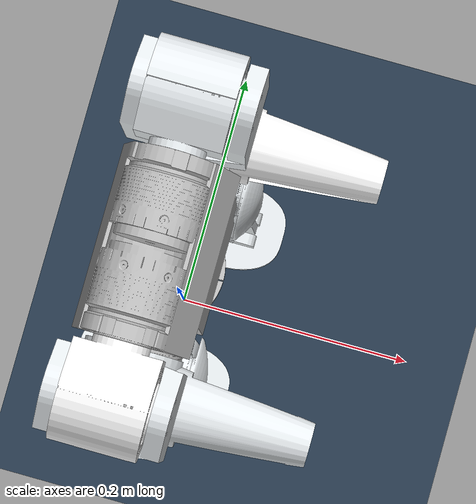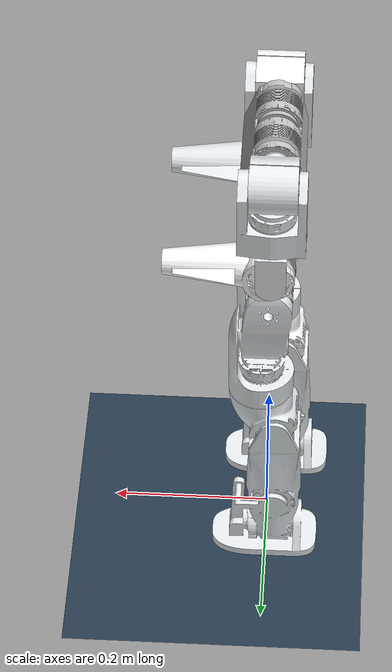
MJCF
<mujoco model="RPMini">
  <compiler angle="radian" meshdir="meshes/" />

  <default>
    <joint limited="true"/>
    <motor ctrllimited="true"/>
    <geom condim="4" contype="1" conaffinity="0" solref="0.001 2" friction="0.9 0.2 0.2" group="1"/>
    <equality solref="0.001 2"/>
    <default class="visualgeom">
      <geom material="visualgeom" condim="1" contype="0" conaffinity="0"/>
    </default>
    <default class="obstacle">
      <geom material="obstacle" condim="3" contype="1" conaffinity="15"/>
    </default>
    <default class="waist_joint_param">
      <joint damping="0.01" frictionloss="0.01" armature="0.01"/>
    </default>
    <default class="leg_joint_param">
      <joint damping="0.01" frictionloss="0.01" armature="0.01"/>
    </default>
    <default class="arm_joint_param">
      <joint damping="0.01" frictionloss="0.01" armature="0.01"/>
    </default>
  </default>

  <default class="main">
    <default class="body_joint">
      <joint range="-0.87 0.87" type="hinge" limited="auto"  armature="0.01" frictionloss="0.2" />
      <position ctrlrange="-0.87 0.87" forcelimited="auto" forcerange="-60 60" kp="40." kv="1." />
      <motor ctrllimited="auto" forcelimited="auto" forcerange="-60 60" gear="1" />
    </default>
    <default class="arm_joint">
      <joint range="-0.79 2.61" type="hinge" limited="auto"  armature="0.01" frictionloss="0.2" />
      <position ctrlrange="-0.79 2.61" forcelimited="auto" forcerange="-60 60" kp="40." kv="1." />
      <motor ctrllimited="auto" forcelimited="auto" forcerange="-60 60" gear="1" />
    </default>
    <default class="leg_joint">
      <joint range="-2.75 -0.55" type="hinge" limited="auto"  armature="0.01" frictionloss="0.2" />
      <position ctrlrange="-2.75 -0.55" forcelimited="auto" forcerange="-60 60" kp="40." kv="1." />
      <motor ctrllimited="auto" forcelimited="auto" forcerange="-60 60" gear="1" />
    </default>

    <default class="sensor_site">
      <site type="sphere" size="0.023" rgba="1 0 1 0.2" />
    </default>

    <default class="contype1">
      <geom contype="2" conaffinity="1" friction="1.2 0.8 0.0005" margin="0.002" condim="4" />
    </default>
    <default class="contype2">
      <geom contype="2" conaffinity="1" friction="1.2 0.8 0.0005" margin="0.002" condim="4" />
    </default>
    <default class="contype3">
      <geom contype="2" conaffinity="1" friction="1.2 0.8 0.0005" margin="0.002" condim="4" />
    </default>
    <default class="visualization">
      <geom contype="0" conaffinity="0" friction="1.2 0.8 0.0005" margin="0.002" condim="4" />
    </default>
  </default>

  <asset>
    <texture type="skybox" builtin="gradient" rgb1="0.3 0.5 0.7" rgb2="0 0 0" width="512" height="512"/>
    <texture name="texplane" type="2d" builtin="checker" rgb1=".2 .3 .4" rgb2=".1 0.15 0.2" width="512" height="512" mark="cross" markrgb=".8 .8 .8"/>
    <material name="matplane" reflectance="0." texture="texplane" texrepeat="1 1" texuniform="true"/>
    <material name="obstacle" rgba="0.9 0.6 0.2 1"/>
    <material name="visualgeom" rgba="0.5 0.9 0.2 1"/>

    <mesh name="base_link" file="base_link.STL" />
    <mesh name="Body_Link" file="Body_Link.STL" />
    <mesh name="Arm_Left_Link_1" file="Arm_Left_Link_1.STL" />
    <mesh name="Arm_Left_Link_2" file="Arm_Left_Link_2.STL" />
    <mesh name="Arm_Left_Link_3" file="Arm_Left_Link_3.STL" />
    <mesh name="Arm_Left_Link_4" file="Arm_Left_Link_4.STL" />
    <mesh name="Arm_Right_Link_1" file="Arm_Right_Link_1.STL" />
    <mesh name="Arm_Right_Link_2" file="Arm_Right_Link_2.STL" />
    <mesh name="Arm_Right_Link_3" file="Arm_Right_Link_3.STL" />
    <mesh name="Arm_Right_Link_4" file="Arm_Right_Link_4.STL" />
    <mesh name="Leg_Right_Link_1" file="Leg_Right_Link_1.STL" />
    <mesh name="Leg_Right_Link_2" file="Leg_Right_Link_2.STL" />
    <mesh name="Leg_Right_Link_3" file="Leg_Right_Link_3.STL" />
    <mesh name="Leg_Right_Link_4" file="Leg_Right_Link_4.STL" />
    <mesh name="Leg_Right_Link_5" file="Leg_Right_Link_5.STL" />
    <mesh name="Leg_Right_Link_6" file="Leg_Right_Link_6.STL" />
    <mesh name="Leg_Left_Link_1" file="Leg_Left_Link_1.STL" />
    <mesh name="Leg_Left_Link_2" file="Leg_Left_Link_2.STL" />
    <mesh name="Leg_Left_Link_3" file="Leg_Left_Link_3.STL" />
    <mesh name="Leg_Left_Link_4" file="Leg_Left_Link_4.STL" />
    <mesh name="Leg_Left_Link_5" file="Leg_Left_Link_5.STL" />
    <mesh name="Leg_Left_Link_6" file="Leg_Left_Link_6.STL" />
    <material name="base_link_mat" rgba="0.7529 0.7529 0.7529 1" specular="0" />
    <material name="Body_Link_mat" rgba="0.7529 0.7529 0.7529 1" specular="0" />
    <material name="Arm_Left_Link_1_mat" rgba="0.898 0.9176 0.9294 1" specular="0" />
    <material name="Arm_Left_Link_2_mat" rgba="0.898 0.9176 0.9294 1" specular="0" />
    <material name="Arm_Left_Link_3_mat" rgba="0.898 0.9176 0.9294 1" specular="0" />
    <material name="Arm_Left_Link_4_mat" rgba="1 1 1 1" specular="0" />
    <material name="Arm_Right_Link_1_mat" rgba="1 1 1 1" specular="0" />
    <material name="Arm_Right_Link_2_mat" rgba="0.898 0.9176 0.9294 1" specular="0" />
    <material name="Arm_Right_Link_3_mat" rgba="0.898 0.9176 0.9294 1" specular="0" />
    <material name="Arm_Right_Link_4_mat" rgba="0.898 0.9176 0.9294 1" specular="0" />
    <material name="Leg_Right_Link_1_mat" rgba="0.898 0.9176 0.9294 1" specular="0" />
    <material name="Leg_Right_Link_2_mat" rgba="0.898 0.9176 0.9294 1" specular="0" />
    <material name="Leg_Right_Link_3_mat" rgba="1 1 1 1" specular="0" />
    <material name="Leg_Right_Link_4_mat" rgba="0.898 0.9176 0.9294 1" specular="0" />
    <material name="Leg_Right_Link_5_mat" rgba="0.898 0.9176 0.9294 1" specular="0" />
    <material name="Leg_Right_Link_6_mat" rgba="0.898 0.9176 0.9294 1" specular="0" />
    <material name="Leg_Left_Link_1_mat" rgba="0.898 0.9176 0.9294 1" specular="0" />
    <material name="Leg_Left_Link_2_mat" rgba="0.898 0.9176 0.9294 1" specular="0" />
    <material name="Leg_Left_Link_3_mat" rgba="0.898 0.9176 0.9294 1" specular="0" />
    <material name="Leg_Left_Link_4_mat" rgba="0.898 0.9176 0.9294 1" specular="0" />
    <material name="Leg_Left_Link_5_mat" rgba="0.898 0.9176 0.9294 1" specular="0" />
    <material name="Leg_Left_Link_6_mat" rgba="0.898 0.9176 0.9294 1" specular="0" />
  </asset>

  <worldbody>
    <light directional="true" diffuse=".4 .4 .4" specular="0.1 0.1 0.1" pos="0 0 5.0" dir="0 0 -1" castshadow="false"/>
    <light directional="true" diffuse=".6 .6 .6" specular="0.2 0.2 0.2" pos="0 0 4" dir="0 0 -1"/>
    <geom name="ground" type="plane" size="0 0 1" pos="0.001 0 0" quat="1 0 0 0" material="matplane" condim="1" conaffinity="15" group="0"/>

    <body name="base_link" pos="0 0 0.42">
    <freejoint/>
    <site name="imu" size="0.01" pos="0.0 0 0.0"/>
      <inertial pos="0 -0.0000002 0.0333218" mass="1.3283615" fullinertia="0.0035634 0.0002444 0.003576 0.000008 0.0000014 0.0000005"/>
      <geom pos="0 0 0" group="1" contype="0" conaffinity="0" material="base_link_mat" type="mesh" mesh="base_link" />
      <geom pos="0 0 0.03" rgba="0.9373 0.2667 0.2667 1" group="3" contype="1" conaffinity="1" type="box" size="0.03 0.085 0.02" />
      <body name="body_link" pos="0 0 0.0578">
        <joint name="body_yaw_joint" type="hinge" axis="0 0 1" limited="true" range="-1.57 1.57" damping="0" frictionloss="0"/>
        <inertial pos="-0.0003165 -0.0004759 0.1166458" mass="2.7174975" fullinertia="0.0091348 0.0077747 0.0030079 0.0000031 0.0001627 -0.0000491"/>
        <geom pos="0 0 0" group="1" contype="0" conaffinity="0" material="Body_Link_mat" type="mesh" mesh="Body_Link" />
        <geom pos="0 0 0.1" rgba="0.9373 0.2667 0.2667 1" group="3" contype="1" conaffinity="1" type="box" size="0.035 0.06 0.09" />
        <body name="shoulder_left_pitch_Link" pos="-0.0033281 0.0608 0.1685">
          <joint name="shoulder_left_pitch_joint" type="hinge" axis="0 1 0" limited="true" range="-1.57 1.57" damping="0" frictionloss="0"/>
          <inertial pos="0.0002812 0.0357472 0.0000004" mass="0.5568108" fullinertia="0.000194 0.0001519 0.0001773 -0.0000007 0.0000005 0.0000001"/>
          <geom pos="0 0 0" group="1" contype="0" conaffinity="0" material="Arm_Left_Link_1_mat" type="mesh" mesh="Arm_Left_Link_1" />
          <geom pos="0 0.0374461 0" quat="0.7071068 0 -0.7071068 0" rgba="0.9373 0.2667 0.2667 1" group="3" contype="1" conaffinity="1" type="cylinder" size="0.033186 0.037491" />
          <body name="shoulder_left_roll_Link" pos="0.0298 0.0375 0">
            <joint name="shoulder_left_roll_joint" type="hinge" axis="1 0 0" limited="true" range="0 1.94" damping="0" frictionloss="0"/>
            <inertial pos="-0.0277702 -0.0000002 -0.0505865" mass="0.8451671" fullinertia="0.00059 0.0008885 0.0006511 0.0000001 -0.0000134 -0.000001"/>
            <geom pos="0 0 0" group="1" contype="0" conaffinity="0" material="Arm_Left_Link_2_mat" type="mesh" mesh="Arm_Left_Link_2" />
            <geom pos="-0.03 -0.000826 -0.06" rgba="0.9373 0.2667 0.2667 1" group="3" contype="1" conaffinity="1" type="box" size="0.045 0.03 0.025" />
            <body name="elbow_left_yaw_Link" pos="-0.0285 0 -0.0863">
              <joint name="elbow_left_yaw_joint" type="hinge" axis="0 0 1" limited="true" range="-1.57 1.57" damping="0" frictionloss="0"/>
              <inertial pos="0 0.0215805 -0.0211158" mass="0.0900203" fullinertia="0.0000489 0.0000413 0.0000267 0 0 0.000013"/>
              <geom pos="0 0 0" group="1" contype="0" conaffinity="0" material="Arm_Left_Link_3_mat" type="mesh" mesh="Arm_Left_Link_3" />
              <geom pos="0 0.03 -0.03" rgba="0.9373 0.2667 0.2667 1" group="3" contype="1" conaffinity="1" type="box" size="0.02 0.0050005 0.03" />
              <body name="elbow_left_pitch_Link" pos="0 0.025 -0.045">
                <joint name="elbow_left_pitch_joint" type="hinge" axis="0 1 0" limited="true" range="-0.6 2.1" damping="0" frictionloss="0"/>
                <inertial pos="0.0246073 -0.0317318 0.0000001" mass="0.7552911" fullinertia="0.00022 0.0011752 0.0011753 0.000013 -0.0000018 -0.0000004"/>
                <geom pos="0 0 0" group="1" contype="0" conaffinity="0" material="Arm_Left_Link_4_mat" type="mesh" mesh="Arm_Left_Link_4" />
                <geom pos="0.047796 -0.029616 0" quat="0.7071068 0 -0.7071068 0" rgba="0.9373 0.2667 0.2667 1" group="3" contype="1" conaffinity="1" type="cylinder" size="0.024883 0.08" />
              </body>
            </body>
          </body>
        </body>
        <body name="shoulder_right_pitch_Link" pos="-0.0033281 -0.0608 0.1685">
          <joint name="shoulder_right_pitch_joint" type="hinge" axis="0 1 0" limited="true" range="-1.57 1.57" damping="0" frictionloss="0"/>
          <inertial pos="0.0002812 -0.0357471 -0.0000003" mass="0.5568108" fullinertia="0.0001939 0.0001518 0.0001774 0.0000008 -0.0000002 0"/>
          <geom pos="0 0 0" group="1" contype="0" conaffinity="0" material="Arm_Right_Link_1_mat" type="mesh" mesh="Arm_Right_Link_1" />
          <geom pos="0 -0.0374461 0" quat="0.7071068 0 -0.7071068 0" rgba="0.9373 0.2667 0.2667 1" group="3" contype="1" conaffinity="1" type="cylinder" size="0.033186 0.037491" />
          <body name="shoulder_right_roll_Link" pos="0.0298 -0.0375 0">
            <joint name="shoulder_right_roll_joint" type="hinge" axis="1 0 0" limited="true" range="-1.94 0" damping="0" frictionloss="0"/>
            <inertial pos="-0.0277705 0.0000003 -0.0505865" mass="0.8451671" fullinertia="0.00059 0.0008885 0.0006512 0 -0.0000132 0.0000001"/>
            <geom pos="0 0 0" group="1" contype="0" conaffinity="0" material="Arm_Right_Link_2_mat" type="mesh" mesh="Arm_Right_Link_2" />
            <geom pos="-0.03 0.000826 -0.06" rgba="0.9373 0.2667 0.2667 1" group="3" contype="1" conaffinity="1" type="box" size="0.045 0.03 0.025" />
            <body name="elbow_right_yaw_Link" pos="-0.0285 0 -0.0863">
              <joint name="elbow_right_yaw_joint" type="hinge" axis="0 0 1" limited="true" range="-1.57 1.57" damping="0" frictionloss="0"/>
              <inertial pos="0 -0.0215805 -0.0211158" mass="0.0900203" fullinertia="0.0000489 0.0000413 0.0000267 0 0 -0.000013"/>
              <geom pos="0 0 0" group="1" contype="0" conaffinity="0" material="Arm_Right_Link_3_mat" type="mesh" mesh="Arm_Right_Link_3" />
              <geom pos="0 -0.03 -0.03" rgba="0.9373 0.2667 0.2667 1" group="3" contype="1" conaffinity="1" type="box" size="0.02 0.0050005 0.03" />
              <body name="elbow_right_pitch_Link" pos="0 -0.025 -0.045">
                <joint name="elbow_right_pitch_joint" type="hinge" axis="0 1 0" limited="true" range="-0.6 2.1" damping="0" frictionloss="0"/>
                <inertial pos="0.0246078 0.0317318 0.0000003" mass="0.7552911" fullinertia="0.0002201 0.0011741 0.0011742 -0.0000131 -0.0000017 0.0000007"/>
                <geom pos="0 0 0" group="1" contype="0" conaffinity="0" material="Arm_Right_Link_4_mat" type="mesh" mesh="Arm_Right_Link_4" />
                <geom pos="0.047796 0.029616 0" quat="0.7071068 0 -0.7071068 0" rgba="0.9373 0.2667 0.2667 1" group="3" contype="1" conaffinity="1" type="cylinder" size="0.024883 0.08" />
              </body>
            </body>
          </body>
        </body>
      </body>
      <body name="thigh_right_pitch_Link" pos="0 -0.090733 0.028784">
        <joint name="thigh_right_pitch_joint" type="hinge" axis="0 0.98481 0.17365" limited="true" range="-2 2" damping="0" frictionloss="0"/>
        <inertial pos="0.0032069 0.0109448 -0.0525797" mass="0.7055715" fullinertia="0.000761 0.0007236 0.0004068 -0.0000076 0.0000218 0.0001844"/>
        <geom pos="0 0 0" group="1" contype="0" conaffinity="0" material="Leg_Right_Link_1_mat" type="mesh" mesh="Leg_Right_Link_1" />
        <geom pos="0.0044283 0.015284 -0.0345573" quat="0.9961947 0.0871557 0 0" rgba="0.9373 0.2667 0.2667 1" group="3" contype="1" conaffinity="1" type="box" size="0.0322718 0.0331212 0.0608995" />
        <body name="thigh_right_roll_Link" pos="0.033382 0.018724 -0.067798">
          <joint name="thigh_right_roll_joint" type="hinge" axis="1 0.0002533 -0.0014366" limited="true" range="-1.57 0.66" damping="0" frictionloss="0"/>
          <inertial pos="-0.0221109 -0.0001617 -0.0597233" mass="0.7536725" fullinertia="0.0007192 0.0008115 0.0005711 -0.0000005 -0.0001783 -0.0000012"/>
          <geom pos="0 0 0" group="1" contype="0" conaffinity="0" material="Leg_Right_Link_2_mat" type="mesh" mesh="Leg_Right_Link_2" />
          <geom pos="-0.0240214 0.0003827 -0.06168" rgba="0.9373 0.2667 0.2667 1" group="3" contype="1" conaffinity="1" type="cylinder" size="0.042978 0.030337" />
          <body name="knee_right_yaw_Link" pos="-0.028674 -0.0002439 -0.094668">
            <joint name="knee_right_yaw_joint" type="hinge" axis="-0.0014363 -0.001391 1" limited="true" range="-1.57 1.57" damping="0" frictionloss="0"/>
            <inertial pos="-0.0010623 0.0013856 -0.0329021" mass="0.8048896" fullinertia="0.0006481 0.0006948 0.0006528 0.0000098 -0.0001145 0.0000138"/>
            <geom pos="0 0 0" group="1" contype="0" conaffinity="0" material="Leg_Right_Link_3_mat" type="mesh" mesh="Leg_Right_Link_3" />
            <geom pos="0 0.000383 -0.0354777" rgba="0.9373 0.2667 0.2667 1" group="3" contype="1" conaffinity="1" type="cylinder" size="0.042 0.038291" />
            <body name="knee_right_pitch_Link" pos="-0.019483 0.033861 -0.044901">
              <joint name="knee_right_pitch_joint" type="hinge" axis="0.0002553 1 0.0013907" limited="true" range="0 2.24" damping="0" frictionloss="0"/>
              <inertial pos="-0.0011982 -0.0358569 -0.1334022" mass="1.4602632" fullinertia="0.0050306 0.0050171 0.0010541 0.0000041 0.0000089 -0.0000004"/>
              <geom pos="0 0 0" group="1" contype="0" conaffinity="0" material="Leg_Right_Link_4_mat" type="mesh" mesh="Leg_Right_Link_4" />
              <geom pos="0.006268 -0.035997 -0.117562" rgba="0.9373 0.2667 0.2667 1" group="3" contype="1" conaffinity="1" type="cylinder" size="0.042 0.095391" />
              <body name="foot_right_pitch_Link" pos="-0.0043128 -0.0342792 -0.1944032">
                <joint name="foot_right_pitch_joint" type="hinge" axis="0.0002553 1 0.0013907" limited="true" range="-0.96 0.44" damping="0" frictionloss="0"/>
                <inertial pos="-0.0318857 -0.0001287 0.0007301" mass="0.08" fullinertia="0.0000063 0.0000038 0.0000038 0 -0.0000001 0"/>
                <geom pos="0 0 0" group="1" contype="0" conaffinity="0" material="Leg_Right_Link_5_mat" type="mesh" mesh="Leg_Right_Link_5" />
                <geom pos="0.01 0 -0.027" rgba="0.9373 0.2667 0.2667 1" group="3" contype="1" conaffinity="1" type="box" size="0.0675 0.0365 0.0050005" />
                <body name="foot_right_roll_Link" pos="0 0 0">
                  <joint name="foot_right_roll_joint" type="hinge" axis="1 0.0002533 -0.0014366" limited="true" range="-0.17 0.17" damping="0" frictionloss="0"/>
                  <inertial pos="0.0065742 -0.000011 -0.0223635" mass="0.3325098" fullinertia="0.0001723 0.0004989 0.0005821 -0.0000014 0.0000232 0.0000002"/>
                  <geom pos="0 0 0" group="1" contype="0" conaffinity="0" material="Leg_Right_Link_6_mat" type="mesh" mesh="Leg_Right_Link_6" />
                  <geom pos="0.01 0 -0.027" rgba="0.9373 0.2667 0.2667 1" group="3" contype="1" conaffinity="1" type="box" size="0.0675 0.0365 0.0050005" />
                </body>
              </body>
            </body>
          </body>
        </body>
      </body>
      <body name="thigh_left_pitch_Link" pos="0 0.090733 0.028784">
        <joint name="thigh_left_pitch_joint" type="hinge" axis="0 0.98481 -0.17365" limited="true" range="-2 2" damping="0" frictionloss="0"/>
        <inertial pos="0.0044538 -0.0106927 -0.052492" mass="0.7055715" fullinertia="0.0007597 0.0007237 0.000408 0.000012 0.0000304 -0.000184"/>
        <geom pos="0 0 0" group="1" contype="0" conaffinity="0" material="Leg_Left_Link_1_mat" type="mesh" mesh="Leg_Left_Link_1" />
        <geom pos="0.0044283 -0.015284 -0.0345573" quat="0.9961947 -0.0871557 0 0" rgba="0.9373 0.2667 0.2667 1" group="3" contype="1" conaffinity="1" type="box" size="0.0322718 0.0331212 0.0608995" />
        <body name="thigh_left_roll_Link" pos="0.035 -0.018586 -0.067015">
          <joint name="thigh_left_roll_joint" type="hinge" axis="1 0 0" limited="true" range="-0.66 1.57" damping="0" frictionloss="0"/>
          <inertial pos="-0.0207476 0.0000923 -0.060214" mass="0.7536725" fullinertia="0.0007273 0.0008115 0.000563 0.0000004 -0.0001747 0.0000002"/>
          <geom pos="0 0 0" group="1" contype="0" conaffinity="0" material="Leg_Left_Link_2_mat" type="mesh" mesh="Leg_Left_Link_2" />
          <geom pos="-0.0258 -0.0003827 -0.06168" rgba="0.9373 0.2667 0.2667 1" group="3" contype="1" conaffinity="1" type="cylinder" size="0.042 0.030337" />
          <body name="knee_left_yaw_Link" pos="-0.0265 0.0001325 -0.0953">
            <joint name="knee_left_yaw_joint" type="hinge" axis="0 0.0013908 1" limited="true" range="-1.57 1.57" damping="0" frictionloss="0"/>
            <inertial pos="-0.0098385 -0.0014269 -0.0331428" mass="0.804886" fullinertia="0.0006549 0.0006945 0.000646 -0.0000101 -0.000112 -0.0000143"/>
            <geom pos="0 0 0" group="1" contype="0" conaffinity="0" material="Leg_Left_Link_3_mat" type="mesh" mesh="Leg_Left_Link_3" />
            <geom pos="0 -0.000383 -0.0354777" rgba="0.9373 0.2667 0.2667 1" group="3" contype="1" conaffinity="1" type="cylinder" size="0.042 0.038291" />
            <body name="knee_left_pitch_Link" pos="-0.01811 -0.0340457 -0.0453338">
              <joint name="knee_left_pitch_joint" type="hinge" axis="0.005968 0.99998 -0.0013908" limited="true" range="0 2.24" damping="0" frictionloss="0"/>
              <inertial pos="0.001717 0.0358642 -0.1333744" mass="1.4602632" fullinertia="0.0050264 0.0050151 0.0010567 -0.0000037 0.0001002 0.0000014"/>
              <geom pos="0 0 0" group="1" contype="0" conaffinity="0" material="Leg_Left_Link_4_mat" type="mesh" mesh="Leg_Left_Link_4" />
              <geom pos="0.006268 0.035997 -0.117562" rgba="0.9373 0.2667 0.2667 1" group="3" contype="1" conaffinity="1" type="cylinder" size="0.042 0.095391" />
              <body name="foot_left_pitch_Link" pos="-0.0002029 0.03427 -0.19445">
                <joint name="foot_left_pitch_joint" type="hinge" axis="0.005968 0.99998 -0.0013908" limited="true" range="-0.96 0.44" damping="0" frictionloss="0"/>
                <inertial pos="-0.0318938 0 0" mass="0.08" diaginertia="0.0000063 0.0000038 0.0000038"/>
                <geom pos="0 0 0" group="1" contype="0" conaffinity="0" material="Leg_Left_Link_5_mat" type="mesh" mesh="Leg_Left_Link_5" />
                <geom pos="0.01 0 -0.027" rgba="0.9373 0.2667 0.2667 1" group="3" contype="1" conaffinity="1" type="box" size="0.0675 0.0365 0.0050005" />
                <body name="foot_left_roll_Link" pos="0 0 0">
                  <joint name="foot_left_roll_joint" type="hinge" axis="0.99998 0.005968 0" limited="true" range="-0.17 0.17" damping="0" frictionloss="0"/>
                  <inertial pos="0.0070839 0.0000232 -0.0222072" mass="0.3325099" fullinertia="0.0001715 0.0004989 0.0005829 0.0000011 0.0000138 0.0000001"/>
                  <geom pos="0 0 0" group="1" contype="0" conaffinity="0" material="Leg_Left_Link_6_mat" type="mesh" mesh="Leg_Left_Link_6" />
                  <geom pos="0.01 0 -0.027" rgba="0.9373 0.2667 0.2667 1" group="3" contype="1" conaffinity="1" type="box" size="0.0675 0.0365 0.0050005" />
                </body>
              </body>
            </body>
          </body>
        </body>
      </body>
    </body>
  </worldbody>
  <actuator>
    <motor name="body_yaw_joint" joint="body_yaw_joint" ctrllimited="auto" ctrlrange=" -200 200" gear="1"/>
    <motor name="shoulder_left_pitch_joint" joint="shoulder_left_pitch_joint" ctrllimited="auto" ctrlrange=" -200 200" gear="1"/>
    <motor name="shoulder_left_roll_joint" joint="shoulder_left_roll_joint" ctrllimited="auto" ctrlrange=" -200 200" gear="1"/>
    <motor name="elbow_left_yaw_joint" joint="elbow_left_yaw_joint" ctrllimited="auto" ctrlrange=" -200 200" gear="1"/>
    <motor name="elbow_left_pitch_joint" joint="elbow_left_pitch_joint" ctrllimited="auto" ctrlrange=" -200 200" gear="1"/>
    <motor name="shoulder_right_pitch_joint" joint="shoulder_right_pitch_joint" ctrllimited="auto" ctrlrange=" -200 200" gear="1"/>
    <motor name="shoulder_right_roll_joint" joint="shoulder_right_roll_joint" ctrllimited="auto" ctrlrange=" -200 200" gear="1"/>
    <motor name="elbow_right_yaw_joint" joint="elbow_right_yaw_joint" ctrllimited="auto" ctrlrange=" -200 200" gear="1"/>
    <motor name="elbow_right_pitch_joint" joint="elbow_right_pitch_joint" ctrllimited="auto" ctrlrange=" -200 200" gear="1"/>
    <motor name="thigh_right_pitch_joint" joint="thigh_right_pitch_joint" ctrllimited="auto" ctrlrange=" -200 200" gear="1"/>
    <motor name="thigh_right_roll_joint" joint="thigh_right_roll_joint" ctrllimited="auto" ctrlrange=" -200 200" gear="1"/>
    <motor name="knee_right_yaw_joint" joint="knee_right_yaw_joint" ctrllimited="auto" ctrlrange=" -200 200" gear="1"/>
    <motor name="knee_right_pitch_joint" joint="knee_right_pitch_joint" ctrllimited="auto" ctrlrange=" -200 200" gear="1"/>
    <motor name="foot_right_pitch_joint" joint="foot_right_pitch_joint" ctrllimited="auto" ctrlrange=" -200 200" gear="1"/>
    <motor name="foot_right_roll_joint" joint="foot_right_roll_joint" ctrllimited="auto" ctrlrange=" -200 200" gear="1"/>
    <motor name="thigh_left_pitch_joint" joint="thigh_left_pitch_joint" ctrllimited="auto" ctrlrange=" -200 200" gear="1"/>
    <motor name="thigh_left_roll_joint" joint="thigh_left_roll_joint" ctrllimited="auto" ctrlrange=" -200 200" gear="1"/>
    <motor name="knee_left_yaw_joint" joint="knee_left_yaw_joint" ctrllimited="auto" ctrlrange=" -200 200" gear="1"/>
    <motor name="knee_left_pitch_joint" joint="knee_left_pitch_joint" ctrllimited="auto" ctrlrange=" -200 200" gear="1"/>
    <motor name="foot_left_pitch_joint" joint="foot_left_pitch_joint" ctrllimited="auto" ctrlrange=" -200 200" gear="1"/>
    <motor name="foot_left_roll_joint" joint="foot_left_roll_joint" ctrllimited="auto" ctrlrange=" -200 200" gear="1"/>
  </actuator>
  <sensor>
    <actuatorpos name="body_yaw_joint_p" actuator="body_yaw_joint" user="13"/>
    <actuatorpos name="shoulder_left_pitch_joint_p" actuator="shoulder_left_pitch_joint" user="13"/>
    <actuatorpos name="shoulder_left_roll_joint_p" actuator="shoulder_left_roll_joint" user="13"/>
    <actuatorpos name="elbow_left_yaw_joint_p" actuator="elbow_left_yaw_joint" user="13"/>
    <actuatorpos name="elbow_left_pitch_joint_p" actuator="elbow_left_pitch_joint" user="13"/>
    <actuatorpos name="shoulder_right_pitch_joint_p" actuator="shoulder_right_pitch_joint" user="13"/>
    <actuatorpos name="shoulder_right_roll_joint_p" actuator="shoulder_right_roll_joint" user="13"/>
    <actuatorpos name="elbow_right_yaw_joint_p" actuator="elbow_right_yaw_joint" user="13"/>
    <actuatorpos name="elbow_right_pitch_joint_p" actuator="elbow_right_pitch_joint" user="13"/>
    <actuatorpos name="thigh_right_pitch_joint_p" actuator="thigh_right_pitch_joint" user="13"/>
    <actuatorpos name="thigh_right_roll_joint_p" actuator="thigh_right_roll_joint" user="13"/>
    <actuatorpos name="knee_right_yaw_joint_p" actuator="knee_right_yaw_joint" user="13"/>
    <actuatorpos name="knee_right_pitch_joint_p" actuator="knee_right_pitch_joint" user="13"/>
    <actuatorpos name="foot_right_pitch_joint_p" actuator="foot_right_pitch_joint" user="13"/>
    <actuatorpos name="foot_right_roll_joint_p" actuator="foot_right_roll_joint" user="13"/>
    <actuatorpos name="thigh_left_pitch_joint_p" actuator="thigh_left_pitch_joint" user="13"/>
    <actuatorpos name="thigh_left_roll_joint_p" actuator="thigh_left_roll_joint" user="13"/>
    <actuatorpos name="knee_left_yaw_joint_p" actuator="knee_left_yaw_joint" user="13"/>
    <actuatorpos name="knee_left_pitch_joint_p" actuator="knee_left_pitch_joint" user="13"/>
    <actuatorpos name="foot_left_pitch_joint_p" actuator="foot_left_pitch_joint" user="13"/>
    <actuatorpos name="foot_left_roll_joint_p" actuator="foot_left_roll_joint" user="13"/>

    <actuatorvel name="body_yaw_joint_v" actuator="body_yaw_joint" user="13"/>
    <actuatorvel name="shoulder_left_pitch_joint_v" actuator="shoulder_left_pitch_joint" user="13"/>
    <actuatorvel name="shoulder_left_roll_joint_v" actuator="shoulder_left_roll_joint" user="13"/>
    <actuatorvel name="elbow_left_yaw_joint_v" actuator="elbow_left_yaw_joint" user="13"/>
    <actuatorvel name="elbow_left_pitch_joint_v" actuator="elbow_left_pitch_joint" user="13"/>
    <actuatorvel name="shoulder_right_pitch_joint_v" actuator="shoulder_right_pitch_joint" user="13"/>
    <actuatorvel name="shoulder_right_roll_joint_v" actuator="shoulder_right_roll_joint" user="13"/>
    <actuatorvel name="elbow_right_yaw_joint_v" actuator="elbow_right_yaw_joint" user="13"/>
    <actuatorvel name="elbow_right_pitch_joint_v" actuator="elbow_right_pitch_joint" user="13"/>
    <actuatorvel name="thigh_right_pitch_joint_v" actuator="thigh_right_pitch_joint" user="13"/>
    <actuatorvel name="thigh_right_roll_joint_v" actuator="thigh_right_roll_joint" user="13"/>
    <actuatorvel name="knee_right_yaw_joint_v" actuator="knee_right_yaw_joint" user="13"/>
    <actuatorvel name="knee_right_pitch_joint_v" actuator="knee_right_pitch_joint" user="13"/>
    <actuatorvel name="foot_right_pitch_joint_v" actuator="foot_right_pitch_joint" user="13"/>
    <actuatorvel name="foot_right_roll_joint_v" actuator="foot_right_roll_joint" user="13"/>
    <actuatorvel name="thigh_left_pitch_joint_v" actuator="thigh_left_pitch_joint" user="13"/>
    <actuatorvel name="thigh_left_roll_joint_v" actuator="thigh_left_roll_joint" user="13"/>
    <actuatorvel name="knee_left_yaw_joint_v" actuator="knee_left_yaw_joint" user="13"/>
    <actuatorvel name="knee_left_pitch_joint_v" actuator="knee_left_pitch_joint" user="13"/>
    <actuatorvel name="foot_left_pitch_joint_v" actuator="foot_left_pitch_joint" user="13"/>
    <actuatorvel name="foot_left_roll_joint_v" actuator="foot_left_roll_joint" user="13"/>

    <actuatorfrc name="knee_left_yaw_joint_f" actuator="knee_left_yaw_joint" user="13" noise="1e-3"/>
    <actuatorfrc name="thigh_left_roll_joint_f" actuator="thigh_left_roll_joint" user="13" noise="1e-3"/>
    <actuatorfrc name="thigh_left_pitch_joint_f" actuator="thigh_left_pitch_joint" user="13" noise="1e-3"/>
    <actuatorfrc name="knee_left_pitch_joint_f" actuator="knee_left_pitch_joint" user="13" noise="1e-3"/>
    <actuatorfrc name="foot_left_pitch_joint_f" actuator="foot_left_pitch_joint" user="13" noise="1e-3"/>
    <actuatorfrc name="foot_left_roll_joint_f" actuator="foot_left_roll_joint" user="13" noise="1e-3"/>
    <actuatorfrc name="knee_right_yaw_joint_f" actuator="knee_right_yaw_joint" user="13" noise="1e-3"/>
    <actuatorfrc name="thigh_right_roll_joint_f" actuator="thigh_right_roll_joint" user="13" noise="1e-3"/>
    <actuatorfrc name="thigh_right_pitch_joint_f" actuator="thigh_right_pitch_joint" user="13" noise="1e-3"/>
    <actuatorfrc name="knee_right_pitch_joint_f" actuator="knee_right_pitch_joint" user="13" noise="1e-3"/>
    <actuatorfrc name="foot_right_pitch_joint_f" actuator="foot_right_pitch_joint" user="13" noise="1e-3"/>
    <actuatorfrc name="foot_right_roll_joint_f" actuator="foot_right_roll_joint" user="13" noise="1e-3"/>
    <actuatorfrc name="body_yaw_joint_f" actuator="body_yaw_joint" user="13" noise="1e-3"/>
    <actuatorfrc name="shoulder_left_pitch_joint_f" actuator="shoulder_left_pitch_joint" user="13" noise="1e-3"/>
    <actuatorfrc name="shoulder_left_roll_joint_f" actuator="shoulder_left_roll_joint" user="13" noise="1e-3"/>
    <actuatorfrc name="elbow_left_yaw_joint_f" actuator="elbow_left_yaw_joint" user="13" noise="1e-3"/>
    <actuatorfrc name="elbow_left_pitch_joint_f" actuator="elbow_left_pitch_joint" user="13" noise="1e-3"/>
    <actuatorfrc name="shoulder_right_pitch_joint_f" actuator="shoulder_right_pitch_joint" user="13" noise="1e-3"/>
    <actuatorfrc name="shoulder_right_roll_joint_f" actuator="shoulder_right_roll_joint" user="13" noise="1e-3"/>
    <actuatorfrc name="elbow_right_yaw_joint_f" actuator="elbow_right_yaw_joint" user="13" noise="1e-3"/>
    <actuatorfrc name="elbow_right_pitch_joint_f" actuator="elbow_right_pitch_joint" user="13" noise="1e-3"/>

    <framequat name="orientation" objtype="site" noise="0.001" objname="imu"/>
    <framepos name="position" objtype="site" noise="0.001" objname="imu"/>
    <gyro name="angular-velocity" site="imu" noise="0.005" cutoff="34.9"/>
    <velocimeter name="linear-velocity" site="imu" noise="0.001" cutoff="30"/>
    <accelerometer name="linear-acceleration" site="imu" noise="0.005" cutoff="157"/>
    <magnetometer name="magnetometer" site="imu"/>
  </sensor>
  <visual>
    <global offwidth="1920" offheight="1080"/>
  </visual>
</mujoco>
